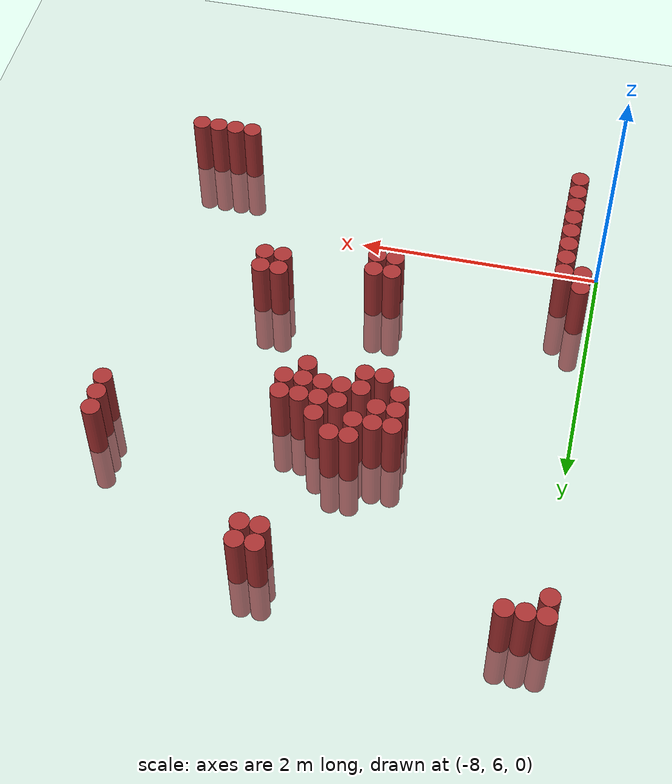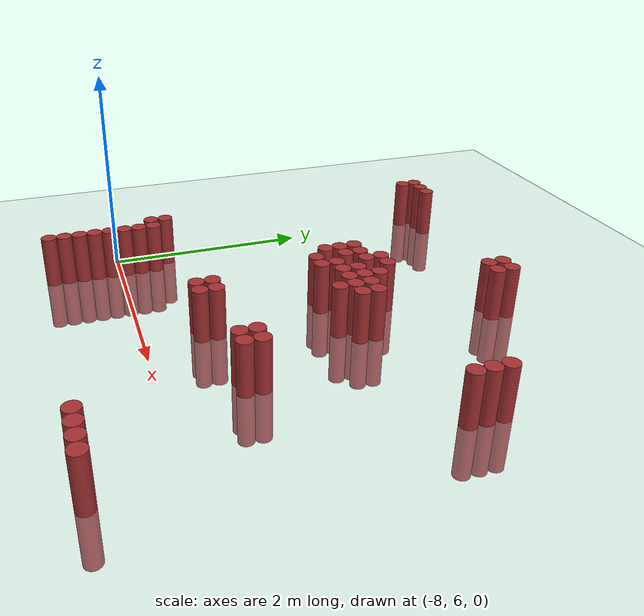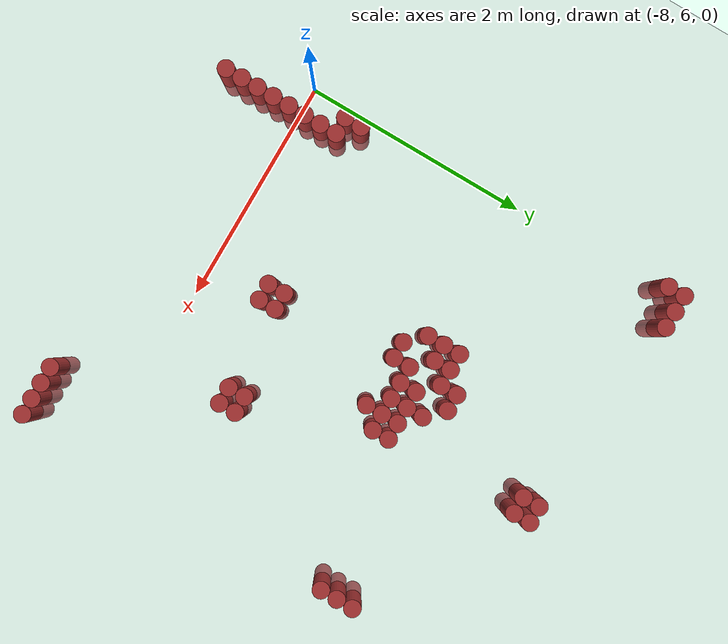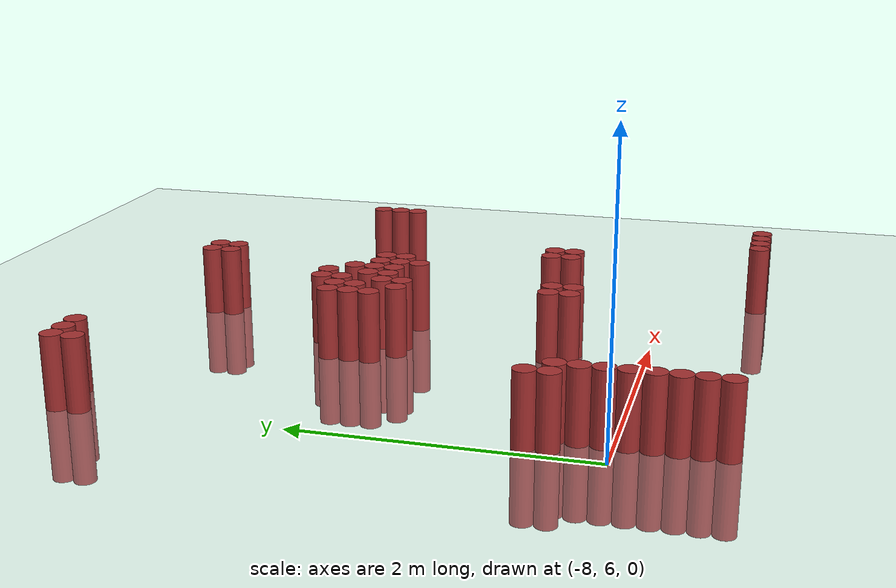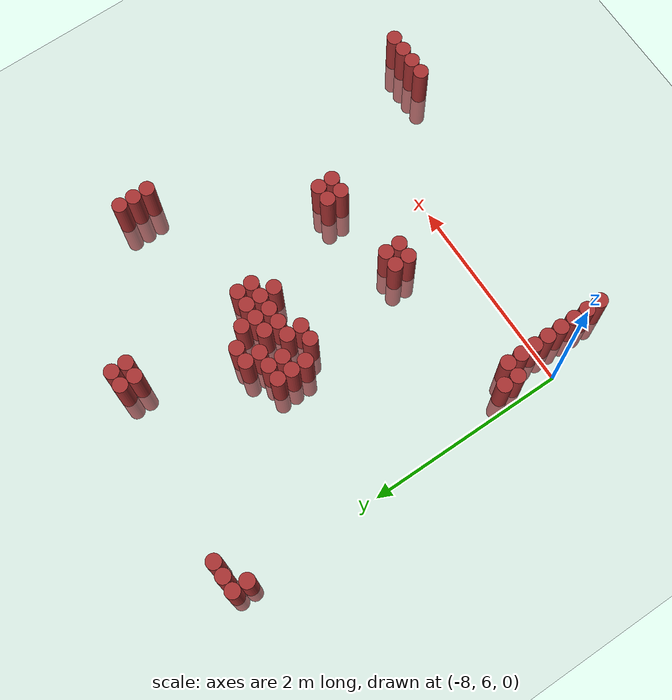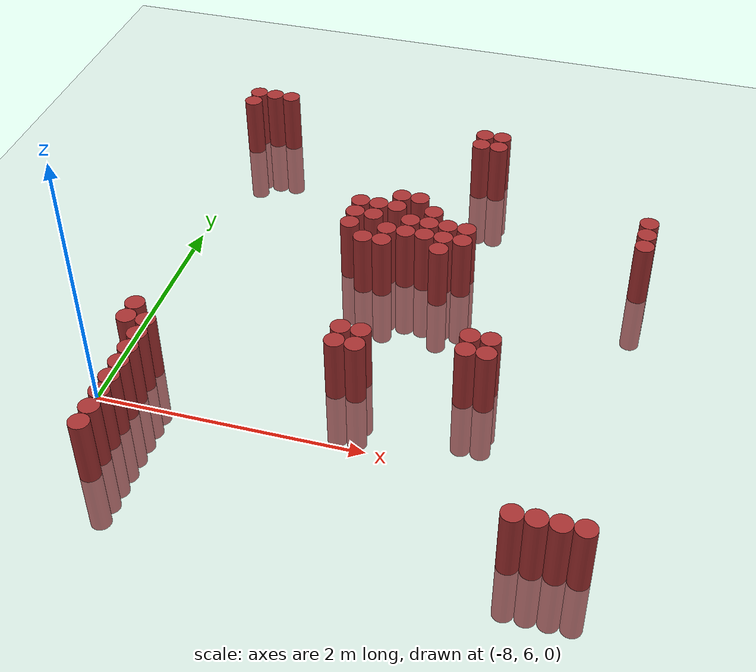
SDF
<sdf version="1.6">
 <world name="default">
  <model name="ground_plane">
   <static>1</static>
   <link name="link">
    <collision name="collision">
     <geometry><plane><normal>0 0 1</normal><size>100 100</size></plane></geometry>
     <surface><friction><ode><mu>100</mu><mu2>50</mu2></ode></friction></surface>
    </collision>
    <visual name="visual">
     <cast_shadows>0</cast_shadows>
     <geometry><plane><normal>0 0 1</normal><size>100 100</size></plane></geometry>
     <material>
      <script><uri>file://media/materials/scripts/gazebo.material</uri><name>Gazebo/Grey</name></script>
     </material>
    </visual>
   </link>
  </model>
  <model name="unit_cylinder_185">
   <static>1</static>
   <pose>-8.025000 9.375000 0.000000 0.000000 0.000000 0.000000</pose>
   <link name="link">
    <inertial>
     <mass>1</mass>
     <inertia><ixx>0.145833</ixx><ixy>0</ixy><ixz>0</ixz><iyy>0.145833</iyy><iyz>0</iyz><izz>0.125</izz></inertia>
    </inertial>
    <collision name="collision">
     <geometry><cylinder><radius>0.075000</radius><length>1</length></cylinder></geometry>
    </collision>
    <visual name="visual">
     <geometry><cylinder><radius>0.075000</radius><length>1</length></cylinder></geometry>
     <material>
      <ambient>0.648000 0.192000 0.192000 1</ambient>
      <diffuse>0.648000 0.192000 0.192000 1</diffuse>
     </material>
     <material>
      <script><name>Gazebo/Grey</name><uri>file://media/materials/scripts/gazebo.material</uri></script>
     </material>
    </visual>
   </link>
  </model>
  <model name="unit_cylinder_186">
   <static>1</static>
   <pose>-8.025000 9.525000 0.000000 0.000000 0.000000 0.000000</pose>
   <link name="link">
    <inertial>
     <mass>1</mass>
     <inertia><ixx>0.145833</ixx><ixy>0</ixy><ixz>0</ixz><iyy>0.145833</iyy><iyz>0</iyz><izz>0.125</izz></inertia>
    </inertial>
    <collision name="collision">
     <geometry><cylinder><radius>0.075000</radius><length>1</length></cylinder></geometry>
    </collision>
    <visual name="visual">
     <geometry><cylinder><radius>0.075000</radius><length>1</length></cylinder></geometry>
     <material>
      <ambient>0.648000 0.192000 0.192000 1</ambient>
      <diffuse>0.648000 0.192000 0.192000 1</diffuse>
     </material>
     <material>
      <script><name>Gazebo/Grey</name><uri>file://media/materials/scripts/gazebo.material</uri></script>
     </material>
    </visual>
   </link>
  </model>
  <model name="unit_cylinder_188">
   <static>1</static>
   <pose>-7.875000 6.375000 0.000000 0.000000 0.000000 0.000000</pose>
   <link name="link">
    <inertial>
     <mass>1</mass>
     <inertia><ixx>0.145833</ixx><ixy>0</ixy><ixz>0</ixz><iyy>0.145833</iyy><iyz>0</iyz><izz>0.125</izz></inertia>
    </inertial>
    <collision name="collision">
     <geometry><cylinder><radius>0.075000</radius><length>1</length></cylinder></geometry>
    </collision>
    <visual name="visual">
     <geometry><cylinder><radius>0.075000</radius><length>1</length></cylinder></geometry>
     <material>
      <ambient>0.648000 0.192000 0.192000 1</ambient>
      <diffuse>0.648000 0.192000 0.192000 1</diffuse>
     </material>
     <material>
      <script><name>Gazebo/Grey</name><uri>file://media/materials/scripts/gazebo.material</uri></script>
     </material>
    </visual>
   </link>
  </model>
  <model name="unit_cylinder_189">
   <static>1</static>
   <pose>-7.875000 6.525000 0.000000 0.000000 0.000000 0.000000</pose>
   <link name="link">
    <inertial>
     <mass>1</mass>
     <inertia><ixx>0.145833</ixx><ixy>0</ixy><ixz>0</ixz><iyy>0.145833</iyy><iyz>0</iyz><izz>0.125</izz></inertia>
    </inertial>
    <collision name="collision">
     <geometry><cylinder><radius>0.075000</radius><length>1</length></cylinder></geometry>
    </collision>
    <visual name="visual">
     <geometry><cylinder><radius>0.075000</radius><length>1</length></cylinder></geometry>
     <material>
      <ambient>0.648000 0.192000 0.192000 1</ambient>
      <diffuse>0.648000 0.192000 0.192000 1</diffuse>
     </material>
     <material>
      <script><name>Gazebo/Grey</name><uri>file://media/materials/scripts/gazebo.material</uri></script>
     </material>
    </visual>
   </link>
  </model>
  <model name="unit_cylinder_190">
   <static>1</static>
   <pose>-7.875000 9.525000 0.000000 0.000000 0.000000 0.000000</pose>
   <link name="link">
    <inertial>
     <mass>1</mass>
     <inertia><ixx>0.145833</ixx><ixy>0</ixy><ixz>0</ixz><iyy>0.145833</iyy><iyz>0</iyz><izz>0.125</izz></inertia>
    </inertial>
    <collision name="collision">
     <geometry><cylinder><radius>0.075000</radius><length>1</length></cylinder></geometry>
    </collision>
    <visual name="visual">
     <geometry><cylinder><radius>0.075000</radius><length>1</length></cylinder></geometry>
     <material>
      <ambient>0.648000 0.192000 0.192000 1</ambient>
      <diffuse>0.648000 0.192000 0.192000 1</diffuse>
     </material>
     <material>
      <script><name>Gazebo/Grey</name><uri>file://media/materials/scripts/gazebo.material</uri></script>
     </material>
    </visual>
   </link>
  </model>
  <model name="unit_cylinder_192">
   <static>1</static>
   <pose>-7.725000 5.325000 0.000000 0.000000 0.000000 0.000000</pose>
   <link name="link">
    <inertial>
     <mass>1</mass>
     <inertia><ixx>0.145833</ixx><ixy>0</ixy><ixz>0</ixz><iyy>0.145833</iyy><iyz>0</iyz><izz>0.125</izz></inertia>
    </inertial>
    <collision name="collision">
     <geometry><cylinder><radius>0.075000</radius><length>1</length></cylinder></geometry>
    </collision>
    <visual name="visual">
     <geometry><cylinder><radius>0.075000</radius><length>1</length></cylinder></geometry>
     <material>
      <ambient>0.648000 0.192000 0.192000 1</ambient>
      <diffuse>0.648000 0.192000 0.192000 1</diffuse>
     </material>
     <material>
      <script><name>Gazebo/Grey</name><uri>file://media/materials/scripts/gazebo.material</uri></script>
     </material>
    </visual>
   </link>
  </model>
  <model name="unit_cylinder_193">
   <static>1</static>
   <pose>-7.725000 5.475000 0.000000 0.000000 0.000000 0.000000</pose>
   <link name="link">
    <inertial>
     <mass>1</mass>
     <inertia><ixx>0.145833</ixx><ixy>0</ixy><ixz>0</ixz><iyy>0.145833</iyy><iyz>0</iyz><izz>0.125</izz></inertia>
    </inertial>
    <collision name="collision">
     <geometry><cylinder><radius>0.075000</radius><length>1</length></cylinder></geometry>
    </collision>
    <visual name="visual">
     <geometry><cylinder><radius>0.075000</radius><length>1</length></cylinder></geometry>
     <material>
      <ambient>0.648000 0.192000 0.192000 1</ambient>
      <diffuse>0.648000 0.192000 0.192000 1</diffuse>
     </material>
     <material>
      <script><name>Gazebo/Grey</name><uri>file://media/materials/scripts/gazebo.material</uri></script>
     </material>
    </visual>
   </link>
  </model>
  <model name="unit_cylinder_194">
   <static>1</static>
   <pose>-7.725000 5.625000 0.000000 0.000000 0.000000 0.000000</pose>
   <link name="link">
    <inertial>
     <mass>1</mass>
     <inertia><ixx>0.145833</ixx><ixy>0</ixy><ixz>0</ixz><iyy>0.145833</iyy><iyz>0</iyz><izz>0.125</izz></inertia>
    </inertial>
    <collision name="collision">
     <geometry><cylinder><radius>0.075000</radius><length>1</length></cylinder></geometry>
    </collision>
    <visual name="visual">
     <geometry><cylinder><radius>0.075000</radius><length>1</length></cylinder></geometry>
     <material>
      <ambient>0.648000 0.192000 0.192000 1</ambient>
      <diffuse>0.648000 0.192000 0.192000 1</diffuse>
     </material>
     <material>
      <script><name>Gazebo/Grey</name><uri>file://media/materials/scripts/gazebo.material</uri></script>
     </material>
    </visual>
   </link>
  </model>
  <model name="unit_cylinder_195">
   <static>1</static>
   <pose>-7.725000 5.775000 0.000000 0.000000 0.000000 0.000000</pose>
   <link name="link">
    <inertial>
     <mass>1</mass>
     <inertia><ixx>0.145833</ixx><ixy>0</ixy><ixz>0</ixz><iyy>0.145833</iyy><iyz>0</iyz><izz>0.125</izz></inertia>
    </inertial>
    <collision name="collision">
     <geometry><cylinder><radius>0.075000</radius><length>1</length></cylinder></geometry>
    </collision>
    <visual name="visual">
     <geometry><cylinder><radius>0.075000</radius><length>1</length></cylinder></geometry>
     <material>
      <ambient>0.648000 0.192000 0.192000 1</ambient>
      <diffuse>0.648000 0.192000 0.192000 1</diffuse>
     </material>
     <material>
      <script><name>Gazebo/Grey</name><uri>file://media/materials/scripts/gazebo.material</uri></script>
     </material>
    </visual>
   </link>
  </model>
  <model name="unit_cylinder_196">
   <static>1</static>
   <pose>-7.725000 5.925000 0.000000 0.000000 0.000000 0.000000</pose>
   <link name="link">
    <inertial>
     <mass>1</mass>
     <inertia><ixx>0.145833</ixx><ixy>0</ixy><ixz>0</ixz><iyy>0.145833</iyy><iyz>0</iyz><izz>0.125</izz></inertia>
    </inertial>
    <collision name="collision">
     <geometry><cylinder><radius>0.075000</radius><length>1</length></cylinder></geometry>
    </collision>
    <visual name="visual">
     <geometry><cylinder><radius>0.075000</radius><length>1</length></cylinder></geometry>
     <material>
      <ambient>0.648000 0.192000 0.192000 1</ambient>
      <diffuse>0.648000 0.192000 0.192000 1</diffuse>
     </material>
     <material>
      <script><name>Gazebo/Grey</name><uri>file://media/materials/scripts/gazebo.material</uri></script>
     </material>
    </visual>
   </link>
  </model>
  <model name="unit_cylinder_197">
   <static>1</static>
   <pose>-7.725000 6.075000 0.000000 0.000000 0.000000 0.000000</pose>
   <link name="link">
    <inertial>
     <mass>1</mass>
     <inertia><ixx>0.145833</ixx><ixy>0</ixy><ixz>0</ixz><iyy>0.145833</iyy><iyz>0</iyz><izz>0.125</izz></inertia>
    </inertial>
    <collision name="collision">
     <geometry><cylinder><radius>0.075000</radius><length>1</length></cylinder></geometry>
    </collision>
    <visual name="visual">
     <geometry><cylinder><radius>0.075000</radius><length>1</length></cylinder></geometry>
     <material>
      <ambient>0.648000 0.192000 0.192000 1</ambient>
      <diffuse>0.648000 0.192000 0.192000 1</diffuse>
     </material>
     <material>
      <script><name>Gazebo/Grey</name><uri>file://media/materials/scripts/gazebo.material</uri></script>
     </material>
    </visual>
   </link>
  </model>
  <model name="unit_cylinder_198">
   <static>1</static>
   <pose>-7.725000 6.225000 0.000000 0.000000 0.000000 0.000000</pose>
   <link name="link">
    <inertial>
     <mass>1</mass>
     <inertia><ixx>0.145833</ixx><ixy>0</ixy><ixz>0</ixz><iyy>0.145833</iyy><iyz>0</iyz><izz>0.125</izz></inertia>
    </inertial>
    <collision name="collision">
     <geometry><cylinder><radius>0.075000</radius><length>1</length></cylinder></geometry>
    </collision>
    <visual name="visual">
     <geometry><cylinder><radius>0.075000</radius><length>1</length></cylinder></geometry>
     <material>
      <ambient>0.648000 0.192000 0.192000 1</ambient>
      <diffuse>0.648000 0.192000 0.192000 1</diffuse>
     </material>
     <material>
      <script><name>Gazebo/Grey</name><uri>file://media/materials/scripts/gazebo.material</uri></script>
     </material>
    </visual>
   </link>
  </model>
  <model name="unit_cylinder_199">
   <static>1</static>
   <pose>-7.725000 6.375000 0.000000 0.000000 0.000000 0.000000</pose>
   <link name="link">
    <inertial>
     <mass>1</mass>
     <inertia><ixx>0.145833</ixx><ixy>0</ixy><ixz>0</ixz><iyy>0.145833</iyy><iyz>0</iyz><izz>0.125</izz></inertia>
    </inertial>
    <collision name="collision">
     <geometry><cylinder><radius>0.075000</radius><length>1</length></cylinder></geometry>
    </collision>
    <visual name="visual">
     <geometry><cylinder><radius>0.075000</radius><length>1</length></cylinder></geometry>
     <material>
      <ambient>0.648000 0.192000 0.192000 1</ambient>
      <diffuse>0.648000 0.192000 0.192000 1</diffuse>
     </material>
     <material>
      <script><name>Gazebo/Grey</name><uri>file://media/materials/scripts/gazebo.material</uri></script>
     </material>
    </visual>
   </link>
  </model>
  <model name="unit_cylinder_200">
   <static>1</static>
   <pose>-7.725000 9.525000 0.000000 0.000000 0.000000 0.000000</pose>
   <link name="link">
    <inertial>
     <mass>1</mass>
     <inertia><ixx>0.145833</ixx><ixy>0</ixy><ixz>0</ixz><iyy>0.145833</iyy><iyz>0</iyz><izz>0.125</izz></inertia>
    </inertial>
    <collision name="collision">
     <geometry><cylinder><radius>0.075000</radius><length>1</length></cylinder></geometry>
    </collision>
    <visual name="visual">
     <geometry><cylinder><radius>0.075000</radius><length>1</length></cylinder></geometry>
     <material>
      <ambient>0.648000 0.192000 0.192000 1</ambient>
      <diffuse>0.648000 0.192000 0.192000 1</diffuse>
     </material>
     <material>
      <script><name>Gazebo/Grey</name><uri>file://media/materials/scripts/gazebo.material</uri></script>
     </material>
    </visual>
   </link>
  </model>
  <model name="unit_cylinder_206">
   <static>1</static>
   <pose>-6.675000 7.875000 0.000000 0.000000 0.000000 0.000000</pose>
   <link name="link">
    <inertial>
     <mass>1</mass>
     <inertia><ixx>0.145833</ixx><ixy>0</ixy><ixz>0</ixz><iyy>0.145833</iyy><iyz>0</iyz><izz>0.125</izz></inertia>
    </inertial>
    <collision name="collision">
     <geometry><cylinder><radius>0.075000</radius><length>1</length></cylinder></geometry>
    </collision>
    <visual name="visual">
     <geometry><cylinder><radius>0.075000</radius><length>1</length></cylinder></geometry>
     <material>
      <ambient>0.648000 0.192000 0.192000 1</ambient>
      <diffuse>0.648000 0.192000 0.192000 1</diffuse>
     </material>
     <material>
      <script><name>Gazebo/Grey</name><uri>file://media/materials/scripts/gazebo.material</uri></script>
     </material>
    </visual>
   </link>
  </model>
  <model name="unit_cylinder_207">
   <static>1</static>
   <pose>-6.675000 8.025000 0.000000 0.000000 0.000000 0.000000</pose>
   <link name="link">
    <inertial>
     <mass>1</mass>
     <inertia><ixx>0.145833</ixx><ixy>0</ixy><ixz>0</ixz><iyy>0.145833</iyy><iyz>0</iyz><izz>0.125</izz></inertia>
    </inertial>
    <collision name="collision">
     <geometry><cylinder><radius>0.075000</radius><length>1</length></cylinder></geometry>
    </collision>
    <visual name="visual">
     <geometry><cylinder><radius>0.075000</radius><length>1</length></cylinder></geometry>
     <material>
      <ambient>0.648000 0.192000 0.192000 1</ambient>
      <diffuse>0.648000 0.192000 0.192000 1</diffuse>
     </material>
     <material>
      <script><name>Gazebo/Grey</name><uri>file://media/materials/scripts/gazebo.material</uri></script>
     </material>
    </visual>
   </link>
  </model>
  <model name="unit_cylinder_208">
   <static>1</static>
   <pose>-6.675000 8.175000 0.000000 0.000000 0.000000 0.000000</pose>
   <link name="link">
    <inertial>
     <mass>1</mass>
     <inertia><ixx>0.145833</ixx><ixy>0</ixy><ixz>0</ixz><iyy>0.145833</iyy><iyz>0</iyz><izz>0.125</izz></inertia>
    </inertial>
    <collision name="collision">
     <geometry><cylinder><radius>0.075000</radius><length>1</length></cylinder></geometry>
    </collision>
    <visual name="visual">
     <geometry><cylinder><radius>0.075000</radius><length>1</length></cylinder></geometry>
     <material>
      <ambient>0.648000 0.192000 0.192000 1</ambient>
      <diffuse>0.648000 0.192000 0.192000 1</diffuse>
     </material>
     <material>
      <script><name>Gazebo/Grey</name><uri>file://media/materials/scripts/gazebo.material</uri></script>
     </material>
    </visual>
   </link>
  </model>
  <model name="unit_cylinder_209">
   <static>1</static>
   <pose>-6.525000 7.725000 0.000000 0.000000 0.000000 0.000000</pose>
   <link name="link">
    <inertial>
     <mass>1</mass>
     <inertia><ixx>0.145833</ixx><ixy>0</ixy><ixz>0</ixz><iyy>0.145833</iyy><iyz>0</iyz><izz>0.125</izz></inertia>
    </inertial>
    <collision name="collision">
     <geometry><cylinder><radius>0.075000</radius><length>1</length></cylinder></geometry>
    </collision>
    <visual name="visual">
     <geometry><cylinder><radius>0.075000</radius><length>1</length></cylinder></geometry>
     <material>
      <ambient>0.648000 0.192000 0.192000 1</ambient>
      <diffuse>0.648000 0.192000 0.192000 1</diffuse>
     </material>
     <material>
      <script><name>Gazebo/Grey</name><uri>file://media/materials/scripts/gazebo.material</uri></script>
     </material>
    </visual>
   </link>
  </model>
  <model name="unit_cylinder_210">
   <static>1</static>
   <pose>-6.525000 8.025000 0.000000 0.000000 0.000000 0.000000</pose>
   <link name="link">
    <inertial>
     <mass>1</mass>
     <inertia><ixx>0.145833</ixx><ixy>0</ixy><ixz>0</ixz><iyy>0.145833</iyy><iyz>0</iyz><izz>0.125</izz></inertia>
    </inertial>
    <collision name="collision">
     <geometry><cylinder><radius>0.075000</radius><length>1</length></cylinder></geometry>
    </collision>
    <visual name="visual">
     <geometry><cylinder><radius>0.075000</radius><length>1</length></cylinder></geometry>
     <material>
      <ambient>0.648000 0.192000 0.192000 1</ambient>
      <diffuse>0.648000 0.192000 0.192000 1</diffuse>
     </material>
     <material>
      <script><name>Gazebo/Grey</name><uri>file://media/materials/scripts/gazebo.material</uri></script>
     </material>
    </visual>
   </link>
  </model>
  <model name="unit_cylinder_211">
   <static>1</static>
   <pose>-6.525000 8.175000 0.000000 0.000000 0.000000 0.000000</pose>
   <link name="link">
    <inertial>
     <mass>1</mass>
     <inertia><ixx>0.145833</ixx><ixy>0</ixy><ixz>0</ixz><iyy>0.145833</iyy><iyz>0</iyz><izz>0.125</izz></inertia>
    </inertial>
    <collision name="collision">
     <geometry><cylinder><radius>0.075000</radius><length>1</length></cylinder></geometry>
    </collision>
    <visual name="visual">
     <geometry><cylinder><radius>0.075000</radius><length>1</length></cylinder></geometry>
     <material>
      <ambient>0.648000 0.192000 0.192000 1</ambient>
      <diffuse>0.648000 0.192000 0.192000 1</diffuse>
     </material>
     <material>
      <script><name>Gazebo/Grey</name><uri>file://media/materials/scripts/gazebo.material</uri></script>
     </material>
    </visual>
   </link>
  </model>
  <model name="unit_cylinder_212">
   <static>1</static>
   <pose>-6.375000 6.525000 0.000000 0.000000 0.000000 0.000000</pose>
   <link name="link">
    <inertial>
     <mass>1</mass>
     <inertia><ixx>0.145833</ixx><ixy>0</ixy><ixz>0</ixz><iyy>0.145833</iyy><iyz>0</iyz><izz>0.125</izz></inertia>
    </inertial>
    <collision name="collision">
     <geometry><cylinder><radius>0.075000</radius><length>1</length></cylinder></geometry>
    </collision>
    <visual name="visual">
     <geometry><cylinder><radius>0.075000</radius><length>1</length></cylinder></geometry>
     <material>
      <ambient>0.648000 0.192000 0.192000 1</ambient>
      <diffuse>0.648000 0.192000 0.192000 1</diffuse>
     </material>
     <material>
      <script><name>Gazebo/Grey</name><uri>file://media/materials/scripts/gazebo.material</uri></script>
     </material>
    </visual>
   </link>
  </model>
  <model name="unit_cylinder_213">
   <static>1</static>
   <pose>-6.375000 6.675000 0.000000 0.000000 0.000000 0.000000</pose>
   <link name="link">
    <inertial>
     <mass>1</mass>
     <inertia><ixx>0.145833</ixx><ixy>0</ixy><ixz>0</ixz><iyy>0.145833</iyy><iyz>0</iyz><izz>0.125</izz></inertia>
    </inertial>
    <collision name="collision">
     <geometry><cylinder><radius>0.075000</radius><length>1</length></cylinder></geometry>
    </collision>
    <visual name="visual">
     <geometry><cylinder><radius>0.075000</radius><length>1</length></cylinder></geometry>
     <material>
      <ambient>0.648000 0.192000 0.192000 1</ambient>
      <diffuse>0.648000 0.192000 0.192000 1</diffuse>
     </material>
     <material>
      <script><name>Gazebo/Grey</name><uri>file://media/materials/scripts/gazebo.material</uri></script>
     </material>
    </visual>
   </link>
  </model>
  <model name="unit_cylinder_214">
   <static>1</static>
   <pose>-6.375000 7.725000 0.000000 0.000000 0.000000 0.000000</pose>
   <link name="link">
    <inertial>
     <mass>1</mass>
     <inertia><ixx>0.145833</ixx><ixy>0</ixy><ixz>0</ixz><iyy>0.145833</iyy><iyz>0</iyz><izz>0.125</izz></inertia>
    </inertial>
    <collision name="collision">
     <geometry><cylinder><radius>0.075000</radius><length>1</length></cylinder></geometry>
    </collision>
    <visual name="visual">
     <geometry><cylinder><radius>0.075000</radius><length>1</length></cylinder></geometry>
     <material>
      <ambient>0.648000 0.192000 0.192000 1</ambient>
      <diffuse>0.648000 0.192000 0.192000 1</diffuse>
     </material>
     <material>
      <script><name>Gazebo/Grey</name><uri>file://media/materials/scripts/gazebo.material</uri></script>
     </material>
    </visual>
   </link>
  </model>
  <model name="unit_cylinder_215">
   <static>1</static>
   <pose>-6.375000 7.875000 0.000000 0.000000 0.000000 0.000000</pose>
   <link name="link">
    <inertial>
     <mass>1</mass>
     <inertia><ixx>0.145833</ixx><ixy>0</ixy><ixz>0</ixz><iyy>0.145833</iyy><iyz>0</iyz><izz>0.125</izz></inertia>
    </inertial>
    <collision name="collision">
     <geometry><cylinder><radius>0.075000</radius><length>1</length></cylinder></geometry>
    </collision>
    <visual name="visual">
     <geometry><cylinder><radius>0.075000</radius><length>1</length></cylinder></geometry>
     <material>
      <ambient>0.648000 0.192000 0.192000 1</ambient>
      <diffuse>0.648000 0.192000 0.192000 1</diffuse>
     </material>
     <material>
      <script><name>Gazebo/Grey</name><uri>file://media/materials/scripts/gazebo.material</uri></script>
     </material>
    </visual>
   </link>
  </model>
  <model name="unit_cylinder_216">
   <static>1</static>
   <pose>-6.375000 8.175000 0.000000 0.000000 0.000000 0.000000</pose>
   <link name="link">
    <inertial>
     <mass>1</mass>
     <inertia><ixx>0.145833</ixx><ixy>0</ixy><ixz>0</ixz><iyy>0.145833</iyy><iyz>0</iyz><izz>0.125</izz></inertia>
    </inertial>
    <collision name="collision">
     <geometry><cylinder><radius>0.075000</radius><length>1</length></cylinder></geometry>
    </collision>
    <visual name="visual">
     <geometry><cylinder><radius>0.075000</radius><length>1</length></cylinder></geometry>
     <material>
      <ambient>0.648000 0.192000 0.192000 1</ambient>
      <diffuse>0.648000 0.192000 0.192000 1</diffuse>
     </material>
     <material>
      <script><name>Gazebo/Grey</name><uri>file://media/materials/scripts/gazebo.material</uri></script>
     </material>
    </visual>
   </link>
  </model>
  <model name="unit_cylinder_217">
   <static>1</static>
   <pose>-6.375000 8.325000 0.000000 0.000000 0.000000 0.000000</pose>
   <link name="link">
    <inertial>
     <mass>1</mass>
     <inertia><ixx>0.145833</ixx><ixy>0</ixy><ixz>0</ixz><iyy>0.145833</iyy><iyz>0</iyz><izz>0.125</izz></inertia>
    </inertial>
    <collision name="collision">
     <geometry><cylinder><radius>0.075000</radius><length>1</length></cylinder></geometry>
    </collision>
    <visual name="visual">
     <geometry><cylinder><radius>0.075000</radius><length>1</length></cylinder></geometry>
     <material>
      <ambient>0.648000 0.192000 0.192000 1</ambient>
      <diffuse>0.648000 0.192000 0.192000 1</diffuse>
     </material>
     <material>
      <script><name>Gazebo/Grey</name><uri>file://media/materials/scripts/gazebo.material</uri></script>
     </material>
    </visual>
   </link>
  </model>
  <model name="unit_cylinder_218">
   <static>1</static>
   <pose>-6.225000 6.525000 0.000000 0.000000 0.000000 0.000000</pose>
   <link name="link">
    <inertial>
     <mass>1</mass>
     <inertia><ixx>0.145833</ixx><ixy>0</ixy><ixz>0</ixz><iyy>0.145833</iyy><iyz>0</iyz><izz>0.125</izz></inertia>
    </inertial>
    <collision name="collision">
     <geometry><cylinder><radius>0.075000</radius><length>1</length></cylinder></geometry>
    </collision>
    <visual name="visual">
     <geometry><cylinder><radius>0.075000</radius><length>1</length></cylinder></geometry>
     <material>
      <ambient>0.648000 0.192000 0.192000 1</ambient>
      <diffuse>0.648000 0.192000 0.192000 1</diffuse>
     </material>
     <material>
      <script><name>Gazebo/Grey</name><uri>file://media/materials/scripts/gazebo.material</uri></script>
     </material>
    </visual>
   </link>
  </model>
  <model name="unit_cylinder_219">
   <static>1</static>
   <pose>-6.225000 6.675000 0.000000 0.000000 0.000000 0.000000</pose>
   <link name="link">
    <inertial>
     <mass>1</mass>
     <inertia><ixx>0.145833</ixx><ixy>0</ixy><ixz>0</ixz><iyy>0.145833</iyy><iyz>0</iyz><izz>0.125</izz></inertia>
    </inertial>
    <collision name="collision">
     <geometry><cylinder><radius>0.075000</radius><length>1</length></cylinder></geometry>
    </collision>
    <visual name="visual">
     <geometry><cylinder><radius>0.075000</radius><length>1</length></cylinder></geometry>
     <material>
      <ambient>0.648000 0.192000 0.192000 1</ambient>
      <diffuse>0.648000 0.192000 0.192000 1</diffuse>
     </material>
     <material>
      <script><name>Gazebo/Grey</name><uri>file://media/materials/scripts/gazebo.material</uri></script>
     </material>
    </visual>
   </link>
  </model>
  <model name="unit_cylinder_220">
   <static>1</static>
   <pose>-6.225000 7.875000 0.000000 0.000000 0.000000 0.000000</pose>
   <link name="link">
    <inertial>
     <mass>1</mass>
     <inertia><ixx>0.145833</ixx><ixy>0</ixy><ixz>0</ixz><iyy>0.145833</iyy><iyz>0</iyz><izz>0.125</izz></inertia>
    </inertial>
    <collision name="collision">
     <geometry><cylinder><radius>0.075000</radius><length>1</length></cylinder></geometry>
    </collision>
    <visual name="visual">
     <geometry><cylinder><radius>0.075000</radius><length>1</length></cylinder></geometry>
     <material>
      <ambient>0.648000 0.192000 0.192000 1</ambient>
      <diffuse>0.648000 0.192000 0.192000 1</diffuse>
     </material>
     <material>
      <script><name>Gazebo/Grey</name><uri>file://media/materials/scripts/gazebo.material</uri></script>
     </material>
    </visual>
   </link>
  </model>
  <model name="unit_cylinder_221">
   <static>1</static>
   <pose>-6.225000 8.025000 0.000000 0.000000 0.000000 0.000000</pose>
   <link name="link">
    <inertial>
     <mass>1</mass>
     <inertia><ixx>0.145833</ixx><ixy>0</ixy><ixz>0</ixz><iyy>0.145833</iyy><iyz>0</iyz><izz>0.125</izz></inertia>
    </inertial>
    <collision name="collision">
     <geometry><cylinder><radius>0.075000</radius><length>1</length></cylinder></geometry>
    </collision>
    <visual name="visual">
     <geometry><cylinder><radius>0.075000</radius><length>1</length></cylinder></geometry>
     <material>
      <ambient>0.648000 0.192000 0.192000 1</ambient>
      <diffuse>0.648000 0.192000 0.192000 1</diffuse>
     </material>
     <material>
      <script><name>Gazebo/Grey</name><uri>file://media/materials/scripts/gazebo.material</uri></script>
     </material>
    </visual>
   </link>
  </model>
  <model name="unit_cylinder_222">
   <static>1</static>
   <pose>-6.225000 8.325000 0.000000 0.000000 0.000000 0.000000</pose>
   <link name="link">
    <inertial>
     <mass>1</mass>
     <inertia><ixx>0.145833</ixx><ixy>0</ixy><ixz>0</ixz><iyy>0.145833</iyy><iyz>0</iyz><izz>0.125</izz></inertia>
    </inertial>
    <collision name="collision">
     <geometry><cylinder><radius>0.075000</radius><length>1</length></cylinder></geometry>
    </collision>
    <visual name="visual">
     <geometry><cylinder><radius>0.075000</radius><length>1</length></cylinder></geometry>
     <material>
      <ambient>0.648000 0.192000 0.192000 1</ambient>
      <diffuse>0.648000 0.192000 0.192000 1</diffuse>
     </material>
     <material>
      <script><name>Gazebo/Grey</name><uri>file://media/materials/scripts/gazebo.material</uri></script>
     </material>
    </visual>
   </link>
  </model>
  <model name="unit_cylinder_224">
   <static>1</static>
   <pose>-6.075000 7.875000 0.000000 0.000000 0.000000 0.000000</pose>
   <link name="link">
    <inertial>
     <mass>1</mass>
     <inertia><ixx>0.145833</ixx><ixy>0</ixy><ixz>0</ixz><iyy>0.145833</iyy><iyz>0</iyz><izz>0.125</izz></inertia>
    </inertial>
    <collision name="collision">
     <geometry><cylinder><radius>0.075000</radius><length>1</length></cylinder></geometry>
    </collision>
    <visual name="visual">
     <geometry><cylinder><radius>0.075000</radius><length>1</length></cylinder></geometry>
     <material>
      <ambient>0.648000 0.192000 0.192000 1</ambient>
      <diffuse>0.648000 0.192000 0.192000 1</diffuse>
     </material>
     <material>
      <script><name>Gazebo/Grey</name><uri>file://media/materials/scripts/gazebo.material</uri></script>
     </material>
    </visual>
   </link>
  </model>
  <model name="unit_cylinder_225">
   <static>1</static>
   <pose>-6.075000 8.025000 0.000000 0.000000 0.000000 0.000000</pose>
   <link name="link">
    <inertial>
     <mass>1</mass>
     <inertia><ixx>0.145833</ixx><ixy>0</ixy><ixz>0</ixz><iyy>0.145833</iyy><iyz>0</iyz><izz>0.125</izz></inertia>
    </inertial>
    <collision name="collision">
     <geometry><cylinder><radius>0.075000</radius><length>1</length></cylinder></geometry>
    </collision>
    <visual name="visual">
     <geometry><cylinder><radius>0.075000</radius><length>1</length></cylinder></geometry>
     <material>
      <ambient>0.648000 0.192000 0.192000 1</ambient>
      <diffuse>0.648000 0.192000 0.192000 1</diffuse>
     </material>
     <material>
      <script><name>Gazebo/Grey</name><uri>file://media/materials/scripts/gazebo.material</uri></script>
     </material>
    </visual>
   </link>
  </model>
  <model name="unit_cylinder_226">
   <static>1</static>
   <pose>-6.075000 8.175000 0.000000 0.000000 0.000000 0.000000</pose>
   <link name="link">
    <inertial>
     <mass>1</mass>
     <inertia><ixx>0.145833</ixx><ixy>0</ixy><ixz>0</ixz><iyy>0.145833</iyy><iyz>0</iyz><izz>0.125</izz></inertia>
    </inertial>
    <collision name="collision">
     <geometry><cylinder><radius>0.075000</radius><length>1</length></cylinder></geometry>
    </collision>
    <visual name="visual">
     <geometry><cylinder><radius>0.075000</radius><length>1</length></cylinder></geometry>
     <material>
      <ambient>0.648000 0.192000 0.192000 1</ambient>
      <diffuse>0.648000 0.192000 0.192000 1</diffuse>
     </material>
     <material>
      <script><name>Gazebo/Grey</name><uri>file://media/materials/scripts/gazebo.material</uri></script>
     </material>
    </visual>
   </link>
  </model>
  <model name="unit_cylinder_228">
   <static>1</static>
   <pose>-5.925000 7.725000 0.000000 0.000000 0.000000 0.000000</pose>
   <link name="link">
    <inertial>
     <mass>1</mass>
     <inertia><ixx>0.145833</ixx><ixy>0</ixy><ixz>0</ixz><iyy>0.145833</iyy><iyz>0</iyz><izz>0.125</izz></inertia>
    </inertial>
    <collision name="collision">
     <geometry><cylinder><radius>0.075000</radius><length>1</length></cylinder></geometry>
    </collision>
    <visual name="visual">
     <geometry><cylinder><radius>0.075000</radius><length>1</length></cylinder></geometry>
     <material>
      <ambient>0.648000 0.192000 0.192000 1</ambient>
      <diffuse>0.648000 0.192000 0.192000 1</diffuse>
     </material>
     <material>
      <script><name>Gazebo/Grey</name><uri>file://media/materials/scripts/gazebo.material</uri></script>
     </material>
    </visual>
   </link>
  </model>
  <model name="unit_cylinder_229">
   <static>1</static>
   <pose>-5.925000 7.875000 0.000000 0.000000 0.000000 0.000000</pose>
   <link name="link">
    <inertial>
     <mass>1</mass>
     <inertia><ixx>0.145833</ixx><ixy>0</ixy><ixz>0</ixz><iyy>0.145833</iyy><iyz>0</iyz><izz>0.125</izz></inertia>
    </inertial>
    <collision name="collision">
     <geometry><cylinder><radius>0.075000</radius><length>1</length></cylinder></geometry>
    </collision>
    <visual name="visual">
     <geometry><cylinder><radius>0.075000</radius><length>1</length></cylinder></geometry>
     <material>
      <ambient>0.648000 0.192000 0.192000 1</ambient>
      <diffuse>0.648000 0.192000 0.192000 1</diffuse>
     </material>
     <material>
      <script><name>Gazebo/Grey</name><uri>file://media/materials/scripts/gazebo.material</uri></script>
     </material>
    </visual>
   </link>
  </model>
  <model name="unit_cylinder_230">
   <static>1</static>
   <pose>-5.925000 8.025000 0.000000 0.000000 0.000000 0.000000</pose>
   <link name="link">
    <inertial>
     <mass>1</mass>
     <inertia><ixx>0.145833</ixx><ixy>0</ixy><ixz>0</ixz><iyy>0.145833</iyy><iyz>0</iyz><izz>0.125</izz></inertia>
    </inertial>
    <collision name="collision">
     <geometry><cylinder><radius>0.075000</radius><length>1</length></cylinder></geometry>
    </collision>
    <visual name="visual">
     <geometry><cylinder><radius>0.075000</radius><length>1</length></cylinder></geometry>
     <material>
      <ambient>0.648000 0.192000 0.192000 1</ambient>
      <diffuse>0.648000 0.192000 0.192000 1</diffuse>
     </material>
     <material>
      <script><name>Gazebo/Grey</name><uri>file://media/materials/scripts/gazebo.material</uri></script>
     </material>
    </visual>
   </link>
  </model>
  <model name="unit_cylinder_231">
   <static>1</static>
   <pose>-5.925000 9.225000 0.000000 0.000000 0.000000 0.000000</pose>
   <link name="link">
    <inertial>
     <mass>1</mass>
     <inertia><ixx>0.145833</ixx><ixy>0</ixy><ixz>0</ixz><iyy>0.145833</iyy><iyz>0</iyz><izz>0.125</izz></inertia>
    </inertial>
    <collision name="collision">
     <geometry><cylinder><radius>0.075000</radius><length>1</length></cylinder></geometry>
    </collision>
    <visual name="visual">
     <geometry><cylinder><radius>0.075000</radius><length>1</length></cylinder></geometry>
     <material>
      <ambient>0.648000 0.192000 0.192000 1</ambient>
      <diffuse>0.648000 0.192000 0.192000 1</diffuse>
     </material>
     <material>
      <script><name>Gazebo/Grey</name><uri>file://media/materials/scripts/gazebo.material</uri></script>
     </material>
    </visual>
   </link>
  </model>
  <model name="unit_cylinder_232">
   <static>1</static>
   <pose>-5.925000 9.375000 0.000000 0.000000 0.000000 0.000000</pose>
   <link name="link">
    <inertial>
     <mass>1</mass>
     <inertia><ixx>0.145833</ixx><ixy>0</ixy><ixz>0</ixz><iyy>0.145833</iyy><iyz>0</iyz><izz>0.125</izz></inertia>
    </inertial>
    <collision name="collision">
     <geometry><cylinder><radius>0.075000</radius><length>1</length></cylinder></geometry>
    </collision>
    <visual name="visual">
     <geometry><cylinder><radius>0.075000</radius><length>1</length></cylinder></geometry>
     <material>
      <ambient>0.648000 0.192000 0.192000 1</ambient>
      <diffuse>0.648000 0.192000 0.192000 1</diffuse>
     </material>
     <material>
      <script><name>Gazebo/Grey</name><uri>file://media/materials/scripts/gazebo.material</uri></script>
     </material>
    </visual>
   </link>
  </model>
  <model name="unit_cylinder_234">
   <static>1</static>
   <pose>-5.775000 7.875000 0.000000 0.000000 0.000000 0.000000</pose>
   <link name="link">
    <inertial>
     <mass>1</mass>
     <inertia><ixx>0.145833</ixx><ixy>0</ixy><ixz>0</ixz><iyy>0.145833</iyy><iyz>0</iyz><izz>0.125</izz></inertia>
    </inertial>
    <collision name="collision">
     <geometry><cylinder><radius>0.075000</radius><length>1</length></cylinder></geometry>
    </collision>
    <visual name="visual">
     <geometry><cylinder><radius>0.075000</radius><length>1</length></cylinder></geometry>
     <material>
      <ambient>0.648000 0.192000 0.192000 1</ambient>
      <diffuse>0.648000 0.192000 0.192000 1</diffuse>
     </material>
     <material>
      <script><name>Gazebo/Grey</name><uri>file://media/materials/scripts/gazebo.material</uri></script>
     </material>
    </visual>
   </link>
  </model>
  <model name="unit_cylinder_235">
   <static>1</static>
   <pose>-5.775000 8.025000 0.000000 0.000000 0.000000 0.000000</pose>
   <link name="link">
    <inertial>
     <mass>1</mass>
     <inertia><ixx>0.145833</ixx><ixy>0</ixy><ixz>0</ixz><iyy>0.145833</iyy><iyz>0</iyz><izz>0.125</izz></inertia>
    </inertial>
    <collision name="collision">
     <geometry><cylinder><radius>0.075000</radius><length>1</length></cylinder></geometry>
    </collision>
    <visual name="visual">
     <geometry><cylinder><radius>0.075000</radius><length>1</length></cylinder></geometry>
     <material>
      <ambient>0.648000 0.192000 0.192000 1</ambient>
      <diffuse>0.648000 0.192000 0.192000 1</diffuse>
     </material>
     <material>
      <script><name>Gazebo/Grey</name><uri>file://media/materials/scripts/gazebo.material</uri></script>
     </material>
    </visual>
   </link>
  </model>
  <model name="unit_cylinder_236">
   <static>1</static>
   <pose>-5.775000 9.225000 0.000000 0.000000 0.000000 0.000000</pose>
   <link name="link">
    <inertial>
     <mass>1</mass>
     <inertia><ixx>0.145833</ixx><ixy>0</ixy><ixz>0</ixz><iyy>0.145833</iyy><iyz>0</iyz><izz>0.125</izz></inertia>
    </inertial>
    <collision name="collision">
     <geometry><cylinder><radius>0.075000</radius><length>1</length></cylinder></geometry>
    </collision>
    <visual name="visual">
     <geometry><cylinder><radius>0.075000</radius><length>1</length></cylinder></geometry>
     <material>
      <ambient>0.648000 0.192000 0.192000 1</ambient>
      <diffuse>0.648000 0.192000 0.192000 1</diffuse>
     </material>
     <material>
      <script><name>Gazebo/Grey</name><uri>file://media/materials/scripts/gazebo.material</uri></script>
     </material>
    </visual>
   </link>
  </model>
  <model name="unit_cylinder_237">
   <static>1</static>
   <pose>-5.775000 9.375000 0.000000 0.000000 0.000000 0.000000</pose>
   <link name="link">
    <inertial>
     <mass>1</mass>
     <inertia><ixx>0.145833</ixx><ixy>0</ixy><ixz>0</ixz><iyy>0.145833</iyy><iyz>0</iyz><izz>0.125</izz></inertia>
    </inertial>
    <collision name="collision">
     <geometry><cylinder><radius>0.075000</radius><length>1</length></cylinder></geometry>
    </collision>
    <visual name="visual">
     <geometry><cylinder><radius>0.075000</radius><length>1</length></cylinder></geometry>
     <material>
      <ambient>0.648000 0.192000 0.192000 1</ambient>
      <diffuse>0.648000 0.192000 0.192000 1</diffuse>
     </material>
     <material>
      <script><name>Gazebo/Grey</name><uri>file://media/materials/scripts/gazebo.material</uri></script>
     </material>
    </visual>
   </link>
  </model>
  <model name="unit_cylinder_240">
   <static>1</static>
   <pose>-5.475000 6.675000 0.000000 0.000000 0.000000 0.000000</pose>
   <link name="link">
    <inertial>
     <mass>1</mass>
     <inertia><ixx>0.145833</ixx><ixy>0</ixy><ixz>0</ixz><iyy>0.145833</iyy><iyz>0</iyz><izz>0.125</izz></inertia>
    </inertial>
    <collision name="collision">
     <geometry><cylinder><radius>0.075000</radius><length>1</length></cylinder></geometry>
    </collision>
    <visual name="visual">
     <geometry><cylinder><radius>0.075000</radius><length>1</length></cylinder></geometry>
     <material>
      <ambient>0.648000 0.192000 0.192000 1</ambient>
      <diffuse>0.648000 0.192000 0.192000 1</diffuse>
     </material>
     <material>
      <script><name>Gazebo/Grey</name><uri>file://media/materials/scripts/gazebo.material</uri></script>
     </material>
    </visual>
   </link>
  </model>
  <model name="unit_cylinder_241">
   <static>1</static>
   <pose>-5.475000 6.825000 0.000000 0.000000 0.000000 0.000000</pose>
   <link name="link">
    <inertial>
     <mass>1</mass>
     <inertia><ixx>0.145833</ixx><ixy>0</ixy><ixz>0</ixz><iyy>0.145833</iyy><iyz>0</iyz><izz>0.125</izz></inertia>
    </inertial>
    <collision name="collision">
     <geometry><cylinder><radius>0.075000</radius><length>1</length></cylinder></geometry>
    </collision>
    <visual name="visual">
     <geometry><cylinder><radius>0.075000</radius><length>1</length></cylinder></geometry>
     <material>
      <ambient>0.648000 0.192000 0.192000 1</ambient>
      <diffuse>0.648000 0.192000 0.192000 1</diffuse>
     </material>
     <material>
      <script><name>Gazebo/Grey</name><uri>file://media/materials/scripts/gazebo.material</uri></script>
     </material>
    </visual>
   </link>
  </model>
  <model name="unit_cylinder_243">
   <static>1</static>
   <pose>-5.325000 6.675000 0.000000 0.000000 0.000000 0.000000</pose>
   <link name="link">
    <inertial>
     <mass>1</mass>
     <inertia><ixx>0.145833</ixx><ixy>0</ixy><ixz>0</ixz><iyy>0.145833</iyy><iyz>0</iyz><izz>0.125</izz></inertia>
    </inertial>
    <collision name="collision">
     <geometry><cylinder><radius>0.075000</radius><length>1</length></cylinder></geometry>
    </collision>
    <visual name="visual">
     <geometry><cylinder><radius>0.075000</radius><length>1</length></cylinder></geometry>
     <material>
      <ambient>0.648000 0.192000 0.192000 1</ambient>
      <diffuse>0.648000 0.192000 0.192000 1</diffuse>
     </material>
     <material>
      <script><name>Gazebo/Grey</name><uri>file://media/materials/scripts/gazebo.material</uri></script>
     </material>
    </visual>
   </link>
  </model>
  <model name="unit_cylinder_244">
   <static>1</static>
   <pose>-5.325000 6.825000 0.000000 0.000000 0.000000 0.000000</pose>
   <link name="link">
    <inertial>
     <mass>1</mass>
     <inertia><ixx>0.145833</ixx><ixy>0</ixy><ixz>0</ixz><iyy>0.145833</iyy><iyz>0</iyz><izz>0.125</izz></inertia>
    </inertial>
    <collision name="collision">
     <geometry><cylinder><radius>0.075000</radius><length>1</length></cylinder></geometry>
    </collision>
    <visual name="visual">
     <geometry><cylinder><radius>0.075000</radius><length>1</length></cylinder></geometry>
     <material>
      <ambient>0.648000 0.192000 0.192000 1</ambient>
      <diffuse>0.648000 0.192000 0.192000 1</diffuse>
     </material>
     <material>
      <script><name>Gazebo/Grey</name><uri>file://media/materials/scripts/gazebo.material</uri></script>
     </material>
    </visual>
   </link>
  </model>
  <model name="unit_cylinder_248">
   <static>1</static>
   <pose>-4.875000 5.325000 0.000000 0.000000 0.000000 0.000000</pose>
   <link name="link">
    <inertial>
     <mass>1</mass>
     <inertia><ixx>0.145833</ixx><ixy>0</ixy><ixz>0</ixz><iyy>0.145833</iyy><iyz>0</iyz><izz>0.125</izz></inertia>
    </inertial>
    <collision name="collision">
     <geometry><cylinder><radius>0.075000</radius><length>1</length></cylinder></geometry>
    </collision>
    <visual name="visual">
     <geometry><cylinder><radius>0.075000</radius><length>1</length></cylinder></geometry>
     <material>
      <ambient>0.648000 0.192000 0.192000 1</ambient>
      <diffuse>0.648000 0.192000 0.192000 1</diffuse>
     </material>
     <material>
      <script><name>Gazebo/Grey</name><uri>file://media/materials/scripts/gazebo.material</uri></script>
     </material>
    </visual>
   </link>
  </model>
  <model name="unit_cylinder_250">
   <static>1</static>
   <pose>-4.725000 5.325000 0.000000 0.000000 0.000000 0.000000</pose>
   <link name="link">
    <inertial>
     <mass>1</mass>
     <inertia><ixx>0.145833</ixx><ixy>0</ixy><ixz>0</ixz><iyy>0.145833</iyy><iyz>0</iyz><izz>0.125</izz></inertia>
    </inertial>
    <collision name="collision">
     <geometry><cylinder><radius>0.075000</radius><length>1</length></cylinder></geometry>
    </collision>
    <visual name="visual">
     <geometry><cylinder><radius>0.075000</radius><length>1</length></cylinder></geometry>
     <material>
      <ambient>0.648000 0.192000 0.192000 1</ambient>
      <diffuse>0.648000 0.192000 0.192000 1</diffuse>
     </material>
     <material>
      <script><name>Gazebo/Grey</name><uri>file://media/materials/scripts/gazebo.material</uri></script>
     </material>
    </visual>
   </link>
  </model>
  <model name="unit_cylinder_252">
   <static>1</static>
   <pose>-4.575000 5.325000 0.000000 0.000000 0.000000 0.000000</pose>
   <link name="link">
    <inertial>
     <mass>1</mass>
     <inertia><ixx>0.145833</ixx><ixy>0</ixy><ixz>0</ixz><iyy>0.145833</iyy><iyz>0</iyz><izz>0.125</izz></inertia>
    </inertial>
    <collision name="collision">
     <geometry><cylinder><radius>0.075000</radius><length>1</length></cylinder></geometry>
    </collision>
    <visual name="visual">
     <geometry><cylinder><radius>0.075000</radius><length>1</length></cylinder></geometry>
     <material>
      <ambient>0.648000 0.192000 0.192000 1</ambient>
      <diffuse>0.648000 0.192000 0.192000 1</diffuse>
     </material>
     <material>
      <script><name>Gazebo/Grey</name><uri>file://media/materials/scripts/gazebo.material</uri></script>
     </material>
    </visual>
   </link>
  </model>
  <model name="unit_cylinder_254">
   <static>1</static>
   <pose>-4.425000 5.325000 0.000000 0.000000 0.000000 0.000000</pose>
   <link name="link">
    <inertial>
     <mass>1</mass>
     <inertia><ixx>0.145833</ixx><ixy>0</ixy><ixz>0</ixz><iyy>0.145833</iyy><iyz>0</iyz><izz>0.125</izz></inertia>
    </inertial>
    <collision name="collision">
     <geometry><cylinder><radius>0.075000</radius><length>1</length></cylinder></geometry>
    </collision>
    <visual name="visual">
     <geometry><cylinder><radius>0.075000</radius><length>1</length></cylinder></geometry>
     <material>
      <ambient>0.648000 0.192000 0.192000 1</ambient>
      <diffuse>0.648000 0.192000 0.192000 1</diffuse>
     </material>
     <material>
      <script><name>Gazebo/Grey</name><uri>file://media/materials/scripts/gazebo.material</uri></script>
     </material>
    </visual>
   </link>
  </model>
  <model name="unit_cylinder_255">
   <static>1</static>
   <pose>-4.425000 8.175000 0.000000 0.000000 0.000000 0.000000</pose>
   <link name="link">
    <inertial>
     <mass>1</mass>
     <inertia><ixx>0.145833</ixx><ixy>0</ixy><ixz>0</ixz><iyy>0.145833</iyy><iyz>0</iyz><izz>0.125</izz></inertia>
    </inertial>
    <collision name="collision">
     <geometry><cylinder><radius>0.075000</radius><length>1</length></cylinder></geometry>
    </collision>
    <visual name="visual">
     <geometry><cylinder><radius>0.075000</radius><length>1</length></cylinder></geometry>
     <material>
      <ambient>0.648000 0.192000 0.192000 1</ambient>
      <diffuse>0.648000 0.192000 0.192000 1</diffuse>
     </material>
     <material>
      <script><name>Gazebo/Grey</name><uri>file://media/materials/scripts/gazebo.material</uri></script>
     </material>
    </visual>
   </link>
  </model>
  <model name="unit_cylinder_256">
   <static>1</static>
   <pose>-4.425000 8.325000 0.000000 0.000000 0.000000 0.000000</pose>
   <link name="link">
    <inertial>
     <mass>1</mass>
     <inertia><ixx>0.145833</ixx><ixy>0</ixy><ixz>0</ixz><iyy>0.145833</iyy><iyz>0</iyz><izz>0.125</izz></inertia>
    </inertial>
    <collision name="collision">
     <geometry><cylinder><radius>0.075000</radius><length>1</length></cylinder></geometry>
    </collision>
    <visual name="visual">
     <geometry><cylinder><radius>0.075000</radius><length>1</length></cylinder></geometry>
     <material>
      <ambient>0.648000 0.192000 0.192000 1</ambient>
      <diffuse>0.648000 0.192000 0.192000 1</diffuse>
     </material>
     <material>
      <script><name>Gazebo/Grey</name><uri>file://media/materials/scripts/gazebo.material</uri></script>
     </material>
    </visual>
   </link>
  </model>
  <model name="unit_cylinder_257">
   <static>1</static>
   <pose>-4.425000 8.475000 0.000000 0.000000 0.000000 0.000000</pose>
   <link name="link">
    <inertial>
     <mass>1</mass>
     <inertia><ixx>0.145833</ixx><ixy>0</ixy><ixz>0</ixz><iyy>0.145833</iyy><iyz>0</iyz><izz>0.125</izz></inertia>
    </inertial>
    <collision name="collision">
     <geometry><cylinder><radius>0.075000</radius><length>1</length></cylinder></geometry>
    </collision>
    <visual name="visual">
     <geometry><cylinder><radius>0.075000</radius><length>1</length></cylinder></geometry>
     <material>
      <ambient>0.648000 0.192000 0.192000 1</ambient>
      <diffuse>0.648000 0.192000 0.192000 1</diffuse>
     </material>
     <material>
      <script><name>Gazebo/Grey</name><uri>file://media/materials/scripts/gazebo.material</uri></script>
     </material>
    </visual>
   </link>
  </model>
 </world>
</sdf>
